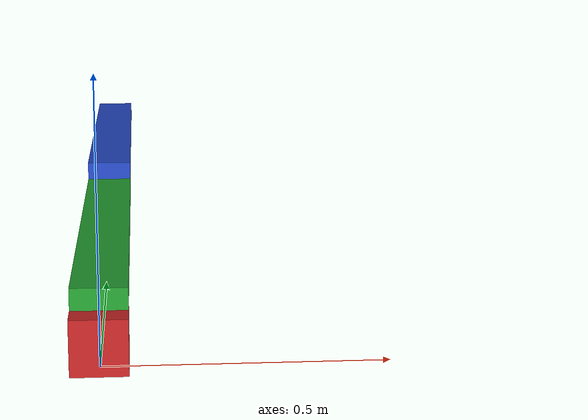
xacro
<?xml version="1.0"?>
<!-- Revolute-Revolute Manipulator -->
<robot name="rrbot" xmlns:xacro="http://www.ros.org/wiki/xacro">

  <!-- Defining constants-->
  <xacro:property name="PI" value="3.14159265359"/>

  <!-- Constants for robot dimensions -->
   <xacro:property name="width" value="0.1" />   <!-- Beams are square in length and width -->
  <xacro:property name="height1" value=".1" />   <!-- Link 1 -->
  <xacro:property name="height2" value="1" />   <!-- Link 2 -->
  <xacro:property name="height3" value="1" />   <!-- Link 3 -->
  <xacro:property name="axle_offset" value="0.05" /> <!-- Space between joint and end of beam -->
  <xacro:property name="damp" value="0.7" />    <!-- damping coefficient -->

  <!-- Import Rviz colors -->
  <xacro:include filename="$(find robotic_arm_pkg)/urdf/materials.xacro" />

  <!-- Import Gazebo elements, including Gazebo colors -->
  <xacro:include filename="$(find robotic_arm_pkg)/urdf/rrbot.gazebo" />

  <!-- Default Inertial -->
  <xacro:macro name="default_inertial" params="z_value mass">
    <inertial>
      <origin xyz="0 0 ${z_value}" rpy="0 0 0"/>
      <mass value="${mass}" />
      <inertia ixx="1.0" ixy="0.0" ixz="0.0"
               iyy="1.0" iyz="0.0"
               izz="1.0" />
      </inertial>
  </xacro:macro>

  <!-- Used for fixing rrbot frame to Gazebo world frame -->
  <link name="world"/>

  <joint name="fixed" type="fixed">
    <parent link="world"/>
    <child link="base_link"/>
  </joint>

  <!-- Base Link -->
  <link name="base_link">
    <visual>
      <origin xyz="0 0 ${height1/2}" rpy="0 0 0"/>
      <geometry>
	<box size="${width} ${width} ${height1}"/>
      </geometry>
      <material name="red"/>
    </visual>

    <collision>
      <origin xyz="0 0 ${height1/2}" rpy="0 0 0"/>
      <geometry>
	<box size="${width} ${width} ${height1}"/>
      </geometry>
    </collision>

    <xacro:default_inertial z_value="${height1/2}" mass="1"/>
  </link>

  <!-- Joint between Base Link and Middle Link -->
  <joint name="joint_base_mid" type="revolute">
    <parent link="base_link"/>
    <child link="mid_link"/>
    <origin xyz="0 0.05 ${0.17 - axle_offset}" rpy="${-PI/2} 0 0"/>
    <axis xyz="0 1 0"/>
    <dynamics damping="${damp}"/>
    <limit effort="100.0" velocity="0.5" lower="-3.14" upper="3.14" />
  </joint>

  <!-- Middle Link -->
  <link name="mid_link">
    <visual>
      <origin xyz="0 0 ${height2/2 - axle_offset}" rpy="0 0 0"/>
      <geometry>
	<box size="${width} 0.04 ${height2}"/>
      </geometry>
      <material name="green"/>
    </visual>

    <collision>
      <origin xyz="0 0 ${height2/2 - axle_offset}" rpy="0 0 0"/>
      <geometry>
	<box size="${width} ${width} ${height2}"/>
      </geometry>
    </collision>

    <xacro:default_inertial z_value="${height2/2 - axle_offset}" mass="1"/>
  </link>

  <!-- Joint between Middle Link and Top Link -->
  <joint name="joint_mid_top" type="revolute">
    <parent link="mid_link"/>
    <child link="top_link"/>
    <origin xyz="0 -0.04 ${height2 - axle_offset*2}" rpy="0 0 0"/>
    <axis xyz="0 1 0"/>
    <dynamics damping="${damp}"/>
    <limit effort="100.0" velocity="0.5" lower="-3.14" upper="3.14" />
  </joint>

  <!-- Top Link -->
  <link name="top_link">
    <visual>
      <origin xyz="0 0 ${height3/2 - axle_offset}" rpy="0 0 0"/>
      <geometry>
	<box size="${width} 0.04 ${height3}"/>
      </geometry>
      <material name="blue"/>
    </visual>

    <collision>
      <origin xyz="0 0 ${height3/2 - axle_offset}" rpy="0 0 0"/>
      <geometry>
	<box size="${width} ${width} ${height3}"/>
      </geometry>
    </collision>

    <xacro:default_inertial z_value="${height3/2 - axle_offset}" mass="1"/>
  </link>

  <transmission name="transmission1">
    <type>transmission_interface/SimpleTransmission</type>
    <joint name="joint_base_mid">
      <hardwareInterface>EffortJointInterface</hardwareInterface>
    </joint>
    <actuator name="motor1">
      <hardwareInterface>EffortJointInterface</hardwareInterface>
      <mechanicalReduction>1</mechanicalReduction>
    </actuator>
  </transmission>

  <transmission name="transmission2">
    <type>transmission_interface/SimpleTransmission</type>
    <joint name="joint_mid_top">
      <hardwareInterface>EffortJointInterface</hardwareInterface>
    </joint>
    <actuator name="motor2">
      <hardwareInterface>EffortJointInterface</hardwareInterface>
      <mechanicalReduction>1</mechanicalReduction>
    </actuator>
  </transmission>

</robot>
